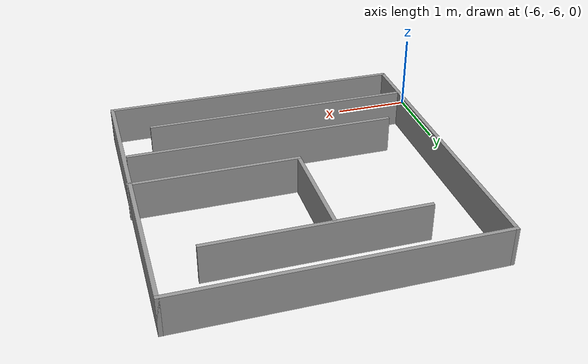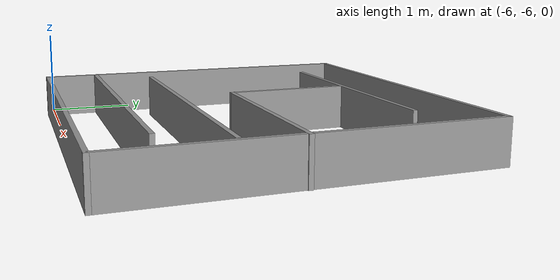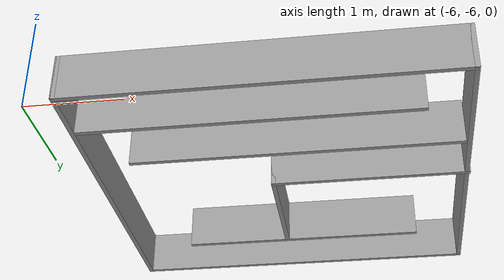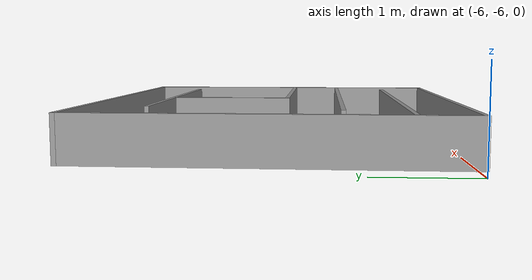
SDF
<?xml version='1.0'?>
<sdf version='1.7'>
  <model name='4_4_map_006'>
    <pose>-2.8525 -3.0475 0 0 -0 0</pose>
    <link name='Wall_11'>
      <collision name='Wall_11_Collision'>
        <geometry>
          <box>
            <size>4 0.05 0.5</size>
          </box>
        </geometry>
        <pose>0 0 0.25 0 -0 0</pose>
      </collision>
      <visual name='Wall_11_Visual'>
        <pose>0 0 0.25 0 -0 0</pose>
        <geometry>
          <box>
            <size>4 0.05 0.5</size>
          </box>
        </geometry>
        <material>
          <script>
            <uri>file://media/materials/scripts/gazebo.material</uri>
            <name>Gazebo/Grey</name>
          </script>
          <ambient>1 1 1 1</ambient>
        </material>
        <meta>
          <layer>0</layer>
        </meta>
      </visual>
      <pose>-2.8275 -1.0475 0 0 -0 -1.5708</pose>
    </link>
    <link name='Wall_13'>
      <collision name='Wall_13_Collision'>
        <geometry>
          <box>
            <size>4 0.05 0.5</size>
          </box>
        </geometry>
        <pose>0 0 0.25 0 -0 0</pose>
      </collision>
      <visual name='Wall_13_Visual'>
        <pose>0 0 0.25 0 -0 0</pose>
        <geometry>
          <box>
            <size>4 0.05 0.5</size>
          </box>
        </geometry>
        <material>
          <script>
            <uri>file://media/materials/scripts/gazebo.material</uri>
            <name>Gazebo/Grey</name>
          </script>
          <ambient>1 1 1 1</ambient>
        </material>
        <meta>
          <layer>0</layer>
        </meta>
      </visual>
      <pose>-0.8525 -3.0225 0 0 -0 0</pose>
    </link>
    <link name='Wall_15'>
      <collision name='Wall_15_Collision'>
        <geometry>
          <box>
            <size>2.75 0.05 0.5</size>
          </box>
        </geometry>
        <pose>0 0 0.25 0 -0 0</pose>
      </collision>
      <visual name='Wall_15_Visual'>
        <pose>0 0 0.25 0 -0 0</pose>
        <geometry>
          <box>
            <size>2.75 0.05 0.5</size>
          </box>
        </geometry>
        <material>
          <script>
            <uri>file://media/materials/scripts/gazebo.material</uri>
            <name>Gazebo/Grey</name>
          </script>
          <ambient>1 1 1 1</ambient>
        </material>
        <meta>
          <layer>0</layer>
        </meta>
      </visual>
      <pose>-0.78037 0.242035 0 0 -0 3.14159</pose>
    </link>
    <link name='Wall_18'>
      <collision name='Wall_18_Collision'>
        <geometry>
          <box>
            <size>3.5 0.05 0.5</size>
          </box>
        </geometry>
        <pose>0 0 0.25 0 -0 0</pose>
      </collision>
      <visual name='Wall_18_Visual'>
        <pose>0 0 0.25 0 -0 0</pose>
        <geometry>
          <box>
            <size>3.5 0.05 0.5</size>
          </box>
        </geometry>
        <material>
          <script>
            <uri>file://media/materials/scripts/gazebo.material</uri>
            <name>Gazebo/Grey</name>
          </script>
          <ambient>1 1 1 1</ambient>
        </material>
        <meta>
          <layer>0</layer>
        </meta>
      </visual>
      <pose>-0.663352 -1.76977 0 0 -0 0</pose>
    </link>
    <link name='Wall_20'>
      <collision name='Wall_20_Collision'>
        <geometry>
          <box>
            <size>3.5 0.05 0.5</size>
          </box>
        </geometry>
        <pose>0 0 0.25 0 -0 0</pose>
      </collision>
      <visual name='Wall_20_Visual'>
        <pose>0 0 0.25 0 -0 0</pose>
        <geometry>
          <box>
            <size>3.5 0.05 0.5</size>
          </box>
        </geometry>
        <material>
          <script>
            <uri>file://media/materials/scripts/gazebo.material</uri>
            <name>Gazebo/Grey</name>
          </script>
          <ambient>1 1 1 1</ambient>
        </material>
        <meta>
          <layer>0</layer>
        </meta>
      </visual>
      <pose>-1.05435 -2.41775 0 0 -0 3.14159</pose>
    </link>
    <link name='Wall_34'>
      <collision name='Wall_34_Collision'>
        <geometry>
          <box>
            <size>1.4 0.05 0.5</size>
          </box>
        </geometry>
        <pose>0 0 0.25 0 -0 0</pose>
      </collision>
      <visual name='Wall_34_Visual'>
        <pose>0 0 0.25 0 -0 0</pose>
        <geometry>
          <box>
            <size>1.4 0.05 0.5</size>
          </box>
        </geometry>
        <material>
          <script>
            <uri>file://media/materials/scripts/gazebo.material</uri>
            <name>Gazebo/Grey</name>
          </script>
          <ambient>1 1 1 1</ambient>
        </material>
        <meta>
          <layer>0</layer>
        </meta>
      </visual>
      <pose>-0.9625 -0.4685 0 0 -0 -1.5708</pose>
    </link>
    <link name='Wall_35'>
      <collision name='Wall_35_Collision'>
        <geometry>
          <box>
            <size>2.14985 0.05 0.5</size>
          </box>
        </geometry>
        <pose>0 0 0.25 0 -0 0</pose>
      </collision>
      <visual name='Wall_35_Visual'>
        <pose>0 0 0.25 0 -0 0</pose>
        <geometry>
          <box>
            <size>2.14985 0.05 0.5</size>
          </box>
        </geometry>
        <material>
          <script>
            <uri>file://media/materials/scripts/gazebo.material</uri>
            <name>Gazebo/Grey</name>
          </script>
          <ambient>1 1 1 1</ambient>
        </material>
        <meta>
          <layer>0</layer>
        </meta>
      </visual>
      <pose>0.0875 -1.1435 0 0 -0 0</pose>
    </link>
    <link name='Wall_5'>
      <collision name='Wall_5_Collision'>
        <geometry>
          <box>
            <size>4 0.05 0.5</size>
          </box>
        </geometry>
        <pose>0 0 0.25 0 -0 0</pose>
      </collision>
      <visual name='Wall_5_Visual'>
        <pose>0 0 0.25 0 -0 0</pose>
        <geometry>
          <box>
            <size>4 0.05 0.5</size>
          </box>
        </geometry>
        <material>
          <script>
            <uri>file://media/materials/scripts/gazebo.material</uri>
            <name>Gazebo/Grey</name>
          </script>
          <ambient>1 1 1 1</ambient>
        </material>
        <meta>
          <layer>0</layer>
        </meta>
      </visual>
      <pose>-0.8525 0.9275 0 0 -0 0</pose>
    </link>
    <link name='Wall_7'>
      <collision name='Wall_7_Collision'>
        <geometry>
          <box>
            <size>4 0.05 0.5</size>
          </box>
        </geometry>
        <pose>0 0 0.25 0 -0 0</pose>
      </collision>
      <visual name='Wall_7_Visual'>
        <pose>0 0 0.25 0 -0 0</pose>
        <geometry>
          <box>
            <size>4 0.05 0.5</size>
          </box>
        </geometry>
        <material>
          <script>
            <uri>file://media/materials/scripts/gazebo.material</uri>
            <name>Gazebo/Grey</name>
          </script>
          <ambient>1 1 1 1</ambient>
        </material>
        <meta>
          <layer>0</layer>
        </meta>
      </visual>
      <pose>1.1225 -1.0475 0 0 -0 -1.5708</pose>
    </link>
    <static>1</static>
  </model>
</sdf>
